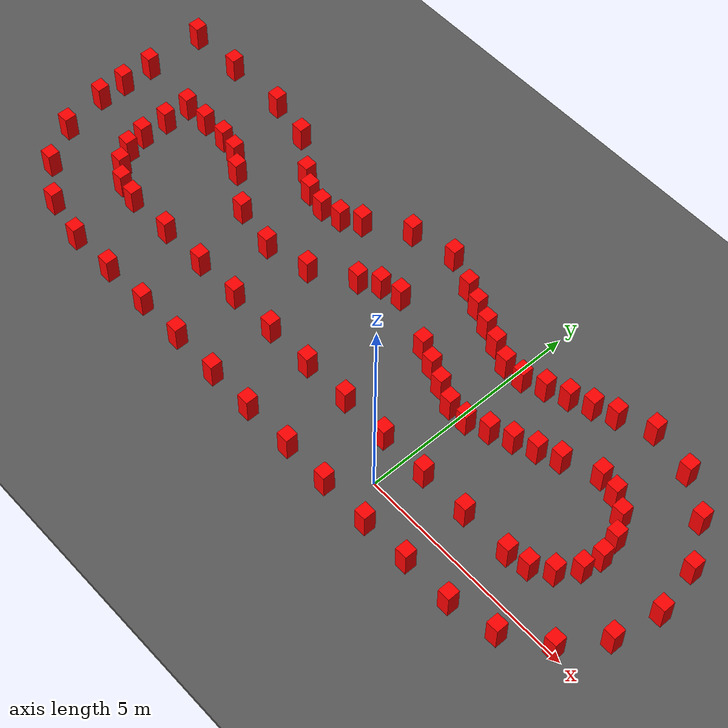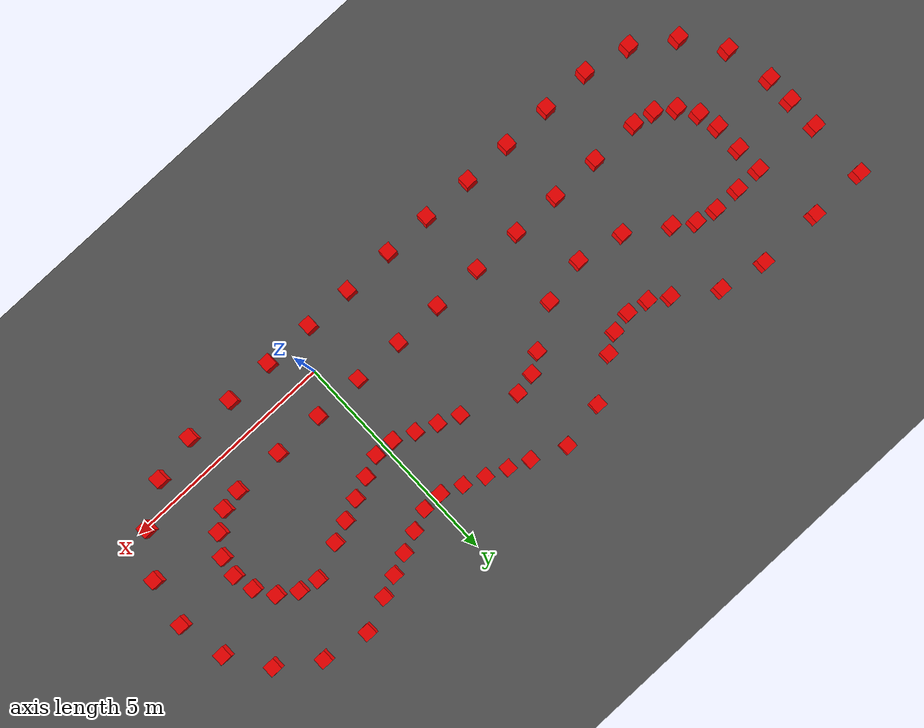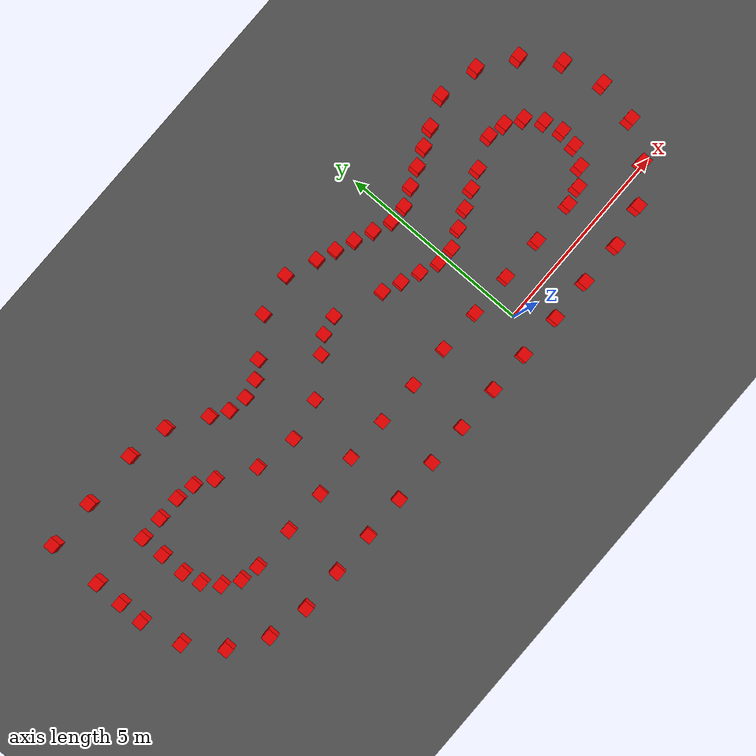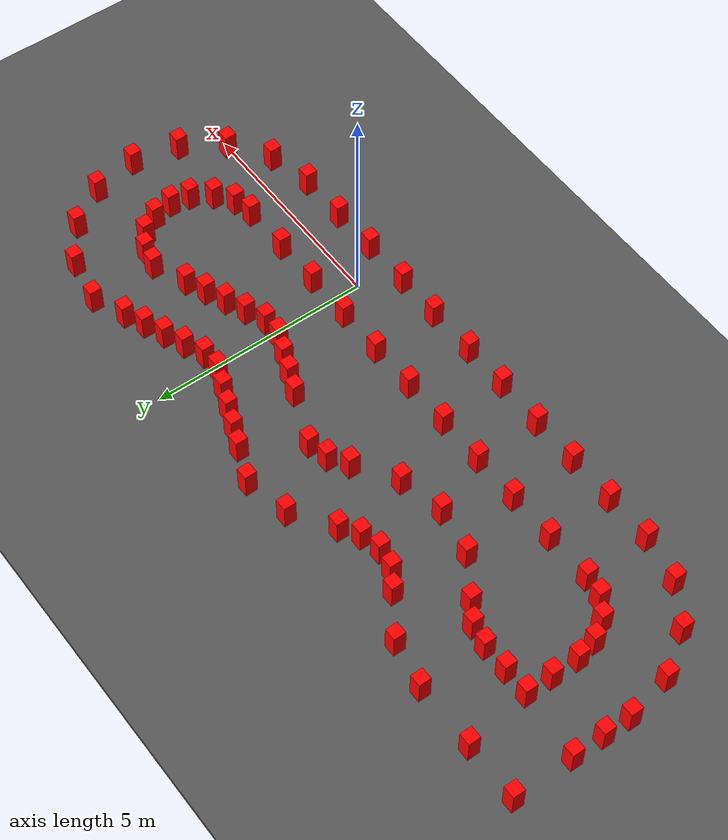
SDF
<?xml version='1.0' encoding='utf-8'?>
<sdf version="1.6">
  <world name="prototype">
    <gravity>0 0 -9.81</gravity>
    <physics name="default" type="ode">
      <max_step_size>0.001</max_step_size>
      <real_time_update_rate>1000</real_time_update_rate>
    </physics>
    <light name="sun" type="directional">
      <direction>-0.5 0.2 -1</direction>
      <diffuse>1 1 1 1</diffuse>
    </light>
    <model name="ground">
      <static>true</static>
      <pose>0 0 -0.05 0 0 0</pose>
      <link name="body">
        <visual name="visual">
          <geometry>
            <box>
              <size>200 200 0.1</size>
            </box>
          </geometry>
          <material>
            <ambient>.35 .35 .35 1</ambient>
            <diffuse>.35 .35 .35 1</diffuse>
          </material>
        </visual>
        <collision name="collision">
          <geometry>
            <box>
              <size>200 200 0.1</size>
            </box>
          </geometry>
        </collision>
      </link>
    </model>
    <model name="cone_proxy_c0">
      <static>true</static>
      <pose>-8.4614 -0.7354 0.315 0 0 0</pose>
      <link name="body">
        <visual name="visual">
          <geometry>
            <box>
              <size>.28 .28 .63</size>
            </box>
          </geometry>
          <material>
            <ambient>1 0 0 1</ambient>
            <diffuse>1 0 0 1</diffuse>
          </material>
        </visual>
        <collision name="collision">
          <geometry>
            <box>
              <size>.28 .28 .63</size>
            </box>
          </geometry>
        </collision>
      </link>
    </model>
    <model name="cone_proxy_c1">
      <static>true</static>
      <pose>-7.3422 -0.7358 0.315 0 0 0</pose>
      <link name="body">
        <visual name="visual">
          <geometry>
            <box>
              <size>.28 .28 .63</size>
            </box>
          </geometry>
          <material>
            <ambient>1 0 0 1</ambient>
            <diffuse>1 0 0 1</diffuse>
          </material>
        </visual>
        <collision name="collision">
          <geometry>
            <box>
              <size>.28 .28 .63</size>
            </box>
          </geometry>
        </collision>
      </link>
    </model>
    <model name="cone_proxy_c2">
      <static>true</static>
      <pose>-6.2104 -0.7362 0.315 0 0 0</pose>
      <link name="body">
        <visual name="visual">
          <geometry>
            <box>
              <size>.28 .28 .63</size>
            </box>
          </geometry>
          <material>
            <ambient>1 0 0 1</ambient>
            <diffuse>1 0 0 1</diffuse>
          </material>
        </visual>
        <collision name="collision">
          <geometry>
            <box>
              <size>.28 .28 .63</size>
            </box>
          </geometry>
        </collision>
      </link>
    </model>
    <model name="cone_proxy_c3">
      <static>true</static>
      <pose>-5.0912 -0.7366 0.315 0 0 0</pose>
      <link name="body">
        <visual name="visual">
          <geometry>
            <box>
              <size>.28 .28 .63</size>
            </box>
          </geometry>
          <material>
            <ambient>1 0 0 1</ambient>
            <diffuse>1 0 0 1</diffuse>
          </material>
        </visual>
        <collision name="collision">
          <geometry>
            <box>
              <size>.28 .28 .63</size>
            </box>
          </geometry>
        </collision>
      </link>
    </model>
    <model name="cone_proxy_c4">
      <static>true</static>
      <pose>-3.9339 -0.7624 0.315 0 0 0</pose>
      <link name="body">
        <visual name="visual">
          <geometry>
            <box>
              <size>.28 .28 .63</size>
            </box>
          </geometry>
          <material>
            <ambient>1 0 0 1</ambient>
            <diffuse>1 0 0 1</diffuse>
          </material>
        </visual>
        <collision name="collision">
          <geometry>
            <box>
              <size>.28 .28 .63</size>
            </box>
          </geometry>
        </collision>
      </link>
    </model>
    <model name="cone_proxy_c5">
      <static>true</static>
      <pose>-2.8402 -0.7628 0.315 0 0 0</pose>
      <link name="body">
        <visual name="visual">
          <geometry>
            <box>
              <size>.28 .28 .63</size>
            </box>
          </geometry>
          <material>
            <ambient>1 0 0 1</ambient>
            <diffuse>1 0 0 1</diffuse>
          </material>
        </visual>
        <collision name="collision">
          <geometry>
            <box>
              <size>.28 .28 .63</size>
            </box>
          </geometry>
        </collision>
      </link>
    </model>
    <model name="cone_proxy_c6">
      <static>true</static>
      <pose>-1.6702 -0.7505 0.315 0 0 0</pose>
      <link name="body">
        <visual name="visual">
          <geometry>
            <box>
              <size>.28 .28 .63</size>
            </box>
          </geometry>
          <material>
            <ambient>1 0 0 1</ambient>
            <diffuse>1 0 0 1</diffuse>
          </material>
        </visual>
        <collision name="collision">
          <geometry>
            <box>
              <size>.28 .28 .63</size>
            </box>
          </geometry>
        </collision>
      </link>
    </model>
    <model name="cone_proxy_c7">
      <static>true</static>
      <pose>-0.5765 -0.7636 0.315 0 0 0</pose>
      <link name="body">
        <visual name="visual">
          <geometry>
            <box>
              <size>.28 .28 .63</size>
            </box>
          </geometry>
          <material>
            <ambient>1 0 0 1</ambient>
            <diffuse>1 0 0 1</diffuse>
          </material>
        </visual>
        <collision name="collision">
          <geometry>
            <box>
              <size>.28 .28 .63</size>
            </box>
          </geometry>
        </collision>
      </link>
    </model>
    <model name="cone_proxy_c8">
      <static>true</static>
      <pose>0.5808 -0.7640 0.315 0 0 0</pose>
      <link name="body">
        <visual name="visual">
          <geometry>
            <box>
              <size>.28 .28 .63</size>
            </box>
          </geometry>
          <material>
            <ambient>1 0 0 1</ambient>
            <diffuse>1 0 0 1</diffuse>
          </material>
        </visual>
        <collision name="collision">
          <geometry>
            <box>
              <size>.28 .28 .63</size>
            </box>
          </geometry>
        </collision>
      </link>
    </model>
    <model name="cone_proxy_c9">
      <static>true</static>
      <pose>1.6873 -0.7389 0.315 0 0 0</pose>
      <link name="body">
        <visual name="visual">
          <geometry>
            <box>
              <size>.28 .28 .63</size>
            </box>
          </geometry>
          <material>
            <ambient>1 0 0 1</ambient>
            <diffuse>1 0 0 1</diffuse>
          </material>
        </visual>
        <collision name="collision">
          <geometry>
            <box>
              <size>.28 .28 .63</size>
            </box>
          </geometry>
        </collision>
      </link>
    </model>
    <model name="cone_proxy_c10">
      <static>true</static>
      <pose>2.8319 -0.7393 0.315 0 0 0</pose>
      <link name="body">
        <visual name="visual">
          <geometry>
            <box>
              <size>.28 .28 .63</size>
            </box>
          </geometry>
          <material>
            <ambient>1 0 0 1</ambient>
            <diffuse>1 0 0 1</diffuse>
          </material>
        </visual>
        <collision name="collision">
          <geometry>
            <box>
              <size>.28 .28 .63</size>
            </box>
          </geometry>
        </collision>
      </link>
    </model>
    <model name="cone_proxy_c11">
      <static>true</static>
      <pose>3.8748 -0.5235 0.315 0 0 0</pose>
      <link name="body">
        <visual name="visual">
          <geometry>
            <box>
              <size>.28 .28 .63</size>
            </box>
          </geometry>
          <material>
            <ambient>1 0 0 1</ambient>
            <diffuse>1 0 0 1</diffuse>
          </material>
        </visual>
        <collision name="collision">
          <geometry>
            <box>
              <size>.28 .28 .63</size>
            </box>
          </geometry>
        </collision>
      </link>
    </model>
    <model name="cone_proxy_c12">
      <static>true</static>
      <pose>4.7652 0.0612 0.315 0 0 0</pose>
      <link name="body">
        <visual name="visual">
          <geometry>
            <box>
              <size>.28 .28 .63</size>
            </box>
          </geometry>
          <material>
            <ambient>1 0 0 1</ambient>
            <diffuse>1 0 0 1</diffuse>
          </material>
        </visual>
        <collision name="collision">
          <geometry>
            <box>
              <size>.28 .28 .63</size>
            </box>
          </geometry>
        </collision>
      </link>
    </model>
    <model name="cone_proxy_c13">
      <static>true</static>
      <pose>5.3633 0.9512 0.315 0 0 0</pose>
      <link name="body">
        <visual name="visual">
          <geometry>
            <box>
              <size>.28 .28 .63</size>
            </box>
          </geometry>
          <material>
            <ambient>1 0 0 1</ambient>
            <diffuse>1 0 0 1</diffuse>
          </material>
        </visual>
        <collision name="collision">
          <geometry>
            <box>
              <size>.28 .28 .63</size>
            </box>
          </geometry>
        </collision>
      </link>
    </model>
    <model name="cone_proxy_c14">
      <static>true</static>
      <pose>5.5798 2.0067 0.315 0 0 0</pose>
      <link name="body">
        <visual name="visual">
          <geometry>
            <box>
              <size>.28 .28 .63</size>
            </box>
          </geometry>
          <material>
            <ambient>1 0 0 1</ambient>
            <diffuse>1 0 0 1</diffuse>
          </material>
        </visual>
        <collision name="collision">
          <geometry>
            <box>
              <size>.28 .28 .63</size>
            </box>
          </geometry>
        </collision>
      </link>
    </model>
    <model name="cone_proxy_c15">
      <static>true</static>
      <pose>5.3640 3.0624 0.315 0 0 0</pose>
      <link name="body">
        <visual name="visual">
          <geometry>
            <box>
              <size>.28 .28 .63</size>
            </box>
          </geometry>
          <material>
            <ambient>1 0 0 1</ambient>
            <diffuse>1 0 0 1</diffuse>
          </material>
        </visual>
        <collision name="collision">
          <geometry>
            <box>
              <size>.28 .28 .63</size>
            </box>
          </geometry>
        </collision>
      </link>
    </model>
    <model name="cone_proxy_c16">
      <static>true</static>
      <pose>4.7666 3.9528 0.315 0 0 0</pose>
      <link name="body">
        <visual name="visual">
          <geometry>
            <box>
              <size>.28 .28 .63</size>
            </box>
          </geometry>
          <material>
            <ambient>1 0 0 1</ambient>
            <diffuse>1 0 0 1</diffuse>
          </material>
        </visual>
        <collision name="collision">
          <geometry>
            <box>
              <size>.28 .28 .63</size>
            </box>
          </geometry>
        </collision>
      </link>
    </model>
    <model name="cone_proxy_c17">
      <static>true</static>
      <pose>3.8893 4.5508 0.315 0 0 0</pose>
      <link name="body">
        <visual name="visual">
          <geometry>
            <box>
              <size>.28 .28 .63</size>
            </box>
          </geometry>
          <material>
            <ambient>1 0 0 1</ambient>
            <diffuse>1 0 0 1</diffuse>
          </material>
        </visual>
        <collision name="collision">
          <geometry>
            <box>
              <size>.28 .28 .63</size>
            </box>
          </geometry>
        </collision>
      </link>
    </model>
    <model name="cone_proxy_c18">
      <static>true</static>
      <pose>2.8465 4.7547 0.315 0 0 0</pose>
      <link name="body">
        <visual name="visual">
          <geometry>
            <box>
              <size>.28 .28 .63</size>
            </box>
          </geometry>
          <material>
            <ambient>1 0 0 1</ambient>
            <diffuse>1 0 0 1</diffuse>
          </material>
        </visual>
        <collision name="collision">
          <geometry>
            <box>
              <size>.28 .28 .63</size>
            </box>
          </geometry>
        </collision>
      </link>
    </model>
    <model name="cone_proxy_c19">
      <static>true</static>
      <pose>-2.8256 4.7567 0.315 0 0 0</pose>
      <link name="body">
        <visual name="visual">
          <geometry>
            <box>
              <size>.28 .28 .63</size>
            </box>
          </geometry>
          <material>
            <ambient>1 0 0 1</ambient>
            <diffuse>1 0 0 1</diffuse>
          </material>
        </visual>
        <collision name="collision">
          <geometry>
            <box>
              <size>.28 .28 .63</size>
            </box>
          </geometry>
        </collision>
      </link>
    </model>
    <model name="cone_proxy_c20">
      <static>true</static>
      <pose>-3.8685 4.5536 0.315 0 0 0</pose>
      <link name="body">
        <visual name="visual">
          <geometry>
            <box>
              <size>.28 .28 .63</size>
            </box>
          </geometry>
          <material>
            <ambient>1 0 0 1</ambient>
            <diffuse>1 0 0 1</diffuse>
          </material>
        </visual>
        <collision name="collision">
          <geometry>
            <box>
              <size>.28 .28 .63</size>
            </box>
          </geometry>
        </collision>
      </link>
    </model>
    <model name="cone_proxy_c21">
      <static>true</static>
      <pose>-4.7589 3.9434 0.315 0 0 0</pose>
      <link name="body">
        <visual name="visual">
          <geometry>
            <box>
              <size>.28 .28 .63</size>
            </box>
          </geometry>
          <material>
            <ambient>1 0 0 1</ambient>
            <diffuse>1 0 0 1</diffuse>
          </material>
        </visual>
        <collision name="collision">
          <geometry>
            <box>
              <size>.28 .28 .63</size>
            </box>
          </geometry>
        </collision>
      </link>
    </model>
    <model name="cone_proxy_c22">
      <static>true</static>
      <pose>-5.1660 3.6892 0.315 0 0 0</pose>
      <link name="body">
        <visual name="visual">
          <geometry>
            <box>
              <size>.28 .28 .63</size>
            </box>
          </geometry>
          <material>
            <ambient>1 0 0 1</ambient>
            <diffuse>1 0 0 1</diffuse>
          </material>
        </visual>
        <collision name="collision">
          <geometry>
            <box>
              <size>.28 .28 .63</size>
            </box>
          </geometry>
        </collision>
      </link>
    </model>
    <model name="cone_proxy_c23">
      <static>true</static>
      <pose>-5.6366 3.5876 0.315 0 0 0</pose>
      <link name="body">
        <visual name="visual">
          <geometry>
            <box>
              <size>.28 .28 .63</size>
            </box>
          </geometry>
          <material>
            <ambient>1 0 0 1</ambient>
            <diffuse>1 0 0 1</diffuse>
          </material>
        </visual>
        <collision name="collision">
          <geometry>
            <box>
              <size>.28 .28 .63</size>
            </box>
          </geometry>
        </collision>
      </link>
    </model>
    <model name="cone_proxy_c24">
      <static>true</static>
      <pose>-6.1198 3.6768 0.315 0 0 0</pose>
      <link name="body">
        <visual name="visual">
          <geometry>
            <box>
              <size>.28 .28 .63</size>
            </box>
          </geometry>
          <material>
            <ambient>1 0 0 1</ambient>
            <diffuse>1 0 0 1</diffuse>
          </material>
        </visual>
        <collision name="collision">
          <geometry>
            <box>
              <size>.28 .28 .63</size>
            </box>
          </geometry>
        </collision>
      </link>
    </model>
    <model name="cone_proxy_c25">
      <static>true</static>
      <pose>-6.5267 3.9440 0.315 0 0 0</pose>
      <link name="body">
        <visual name="visual">
          <geometry>
            <box>
              <size>.28 .28 .63</size>
            </box>
          </geometry>
          <material>
            <ambient>1 0 0 1</ambient>
            <diffuse>1 0 0 1</diffuse>
          </material>
        </visual>
        <collision name="collision">
          <geometry>
            <box>
              <size>.28 .28 .63</size>
            </box>
          </geometry>
        </collision>
      </link>
    </model>
    <model name="cone_proxy_c26">
      <static>true</static>
      <pose>-7.4167 4.5548 0.315 0 0 0</pose>
      <link name="body">
        <visual name="visual">
          <geometry>
            <box>
              <size>.28 .28 .63</size>
            </box>
          </geometry>
          <material>
            <ambient>1 0 0 1</ambient>
            <diffuse>1 0 0 1</diffuse>
          </material>
        </visual>
        <collision name="collision">
          <geometry>
            <box>
              <size>.28 .28 .63</size>
            </box>
          </geometry>
        </collision>
      </link>
    </model>
    <model name="cone_proxy_c27">
      <static>true</static>
      <pose>-8.4595 4.7586 0.315 0 0 0</pose>
      <link name="body">
        <visual name="visual">
          <geometry>
            <box>
              <size>.28 .28 .63</size>
            </box>
          </geometry>
          <material>
            <ambient>1 0 0 1</ambient>
            <diffuse>1 0 0 1</diffuse>
          </material>
        </visual>
        <collision name="collision">
          <geometry>
            <box>
              <size>.28 .28 .63</size>
            </box>
          </geometry>
        </collision>
      </link>
    </model>
    <model name="cone_proxy_c28">
      <static>true</static>
      <pose>-9.9347 4.7592 0.315 0 0 0</pose>
      <link name="body">
        <visual name="visual">
          <geometry>
            <box>
              <size>.28 .28 .63</size>
            </box>
          </geometry>
          <material>
            <ambient>1 0 0 1</ambient>
            <diffuse>1 0 0 1</diffuse>
          </material>
        </visual>
        <collision name="collision">
          <geometry>
            <box>
              <size>.28 .28 .63</size>
            </box>
          </geometry>
        </collision>
      </link>
    </model>
    <model name="cone_proxy_c29">
      <static>true</static>
      <pose>-11.2192 4.7596 0.315 0 0 0</pose>
      <link name="body">
        <visual name="visual">
          <geometry>
            <box>
              <size>.28 .28 .63</size>
            </box>
          </geometry>
          <material>
            <ambient>1 0 0 1</ambient>
            <diffuse>1 0 0 1</diffuse>
          </material>
        </visual>
        <collision name="collision">
          <geometry>
            <box>
              <size>.28 .28 .63</size>
            </box>
          </geometry>
        </collision>
      </link>
    </model>
    <model name="cone_proxy_c30">
      <static>true</static>
      <pose>-11.2197 3.3861 0.315 0 0 0</pose>
      <link name="body">
        <visual name="visual">
          <geometry>
            <box>
              <size>.28 .28 .63</size>
            </box>
          </geometry>
          <material>
            <ambient>1 0 0 1</ambient>
            <diffuse>1 0 0 1</diffuse>
          </material>
        </visual>
        <collision name="collision">
          <geometry>
            <box>
              <size>.28 .28 .63</size>
            </box>
          </geometry>
        </collision>
      </link>
    </model>
    <model name="cone_proxy_c31">
      <static>true</static>
      <pose>-11.2199 2.6485 0.315 0 0 0</pose>
      <link name="body">
        <visual name="visual">
          <geometry>
            <box>
              <size>.28 .28 .63</size>
            </box>
          </geometry>
          <material>
            <ambient>1 0 0 1</ambient>
            <diffuse>1 0 0 1</diffuse>
          </material>
        </visual>
        <collision name="collision">
          <geometry>
            <box>
              <size>.28 .28 .63</size>
            </box>
          </geometry>
        </collision>
      </link>
    </model>
    <model name="cone_proxy_c32">
      <static>true</static>
      <pose>-11.2202 2.0126 0.315 0 0 0</pose>
      <link name="body">
        <visual name="visual">
          <geometry>
            <box>
              <size>.28 .28 .63</size>
            </box>
          </geometry>
          <material>
            <ambient>1 0 0 1</ambient>
            <diffuse>1 0 0 1</diffuse>
          </material>
        </visual>
        <collision name="collision">
          <geometry>
            <box>
              <size>.28 .28 .63</size>
            </box>
          </geometry>
        </collision>
      </link>
    </model>
    <model name="cone_proxy_c33">
      <static>true</static>
      <pose>-11.0043 0.9570 0.315 0 0 0</pose>
      <link name="body">
        <visual name="visual">
          <geometry>
            <box>
              <size>.28 .28 .63</size>
            </box>
          </geometry>
          <material>
            <ambient>1 0 0 1</ambient>
            <diffuse>1 0 0 1</diffuse>
          </material>
        </visual>
        <collision name="collision">
          <geometry>
            <box>
              <size>.28 .28 .63</size>
            </box>
          </geometry>
        </collision>
      </link>
    </model>
    <model name="cone_proxy_c34">
      <static>true</static>
      <pose>-10.4069 0.0665 0.315 0 0 0</pose>
      <link name="body">
        <visual name="visual">
          <geometry>
            <box>
              <size>.28 .28 .63</size>
            </box>
          </geometry>
          <material>
            <ambient>1 0 0 1</ambient>
            <diffuse>1 0 0 1</diffuse>
          </material>
        </visual>
        <collision name="collision">
          <geometry>
            <box>
              <size>.28 .28 .63</size>
            </box>
          </geometry>
        </collision>
      </link>
    </model>
    <model name="cone_proxy_c35">
      <static>true</static>
      <pose>-9.5169 -0.5188 0.315 0 0 0</pose>
      <link name="body">
        <visual name="visual">
          <geometry>
            <box>
              <size>.28 .28 .63</size>
            </box>
          </geometry>
          <material>
            <ambient>1 0 0 1</ambient>
            <diffuse>1 0 0 1</diffuse>
          </material>
        </visual>
        <collision name="collision">
          <geometry>
            <box>
              <size>.28 .28 .63</size>
            </box>
          </geometry>
        </collision>
      </link>
    </model>
    <model name="cone_proxy_c36">
      <static>true</static>
      <pose>-8.4609 0.7653 0.315 0 0 0</pose>
      <link name="body">
        <visual name="visual">
          <geometry>
            <box>
              <size>.28 .28 .63</size>
            </box>
          </geometry>
          <material>
            <ambient>1 0 0 1</ambient>
            <diffuse>1 0 0 1</diffuse>
          </material>
        </visual>
        <collision name="collision">
          <geometry>
            <box>
              <size>.28 .28 .63</size>
            </box>
          </geometry>
        </collision>
      </link>
    </model>
    <model name="cone_proxy_c37">
      <static>true</static>
      <pose>-7.3417 0.7649 0.315 0 0 0</pose>
      <link name="body">
        <visual name="visual">
          <geometry>
            <box>
              <size>.28 .28 .63</size>
            </box>
          </geometry>
          <material>
            <ambient>1 0 0 1</ambient>
            <diffuse>1 0 0 1</diffuse>
          </material>
        </visual>
        <collision name="collision">
          <geometry>
            <box>
              <size>.28 .28 .63</size>
            </box>
          </geometry>
        </collision>
      </link>
    </model>
    <model name="cone_proxy_c38">
      <static>true</static>
      <pose>-6.2098 0.7645 0.315 0 0 0</pose>
      <link name="body">
        <visual name="visual">
          <geometry>
            <box>
              <size>.28 .28 .63</size>
            </box>
          </geometry>
          <material>
            <ambient>1 0 0 1</ambient>
            <diffuse>1 0 0 1</diffuse>
          </material>
        </visual>
        <collision name="collision">
          <geometry>
            <box>
              <size>.28 .28 .63</size>
            </box>
          </geometry>
        </collision>
      </link>
    </model>
    <model name="cone_proxy_c39">
      <static>true</static>
      <pose>-5.0907 0.7641 0.315 0 0 0</pose>
      <link name="body">
        <visual name="visual">
          <geometry>
            <box>
              <size>.28 .28 .63</size>
            </box>
          </geometry>
          <material>
            <ambient>1 0 0 1</ambient>
            <diffuse>1 0 0 1</diffuse>
          </material>
        </visual>
        <collision name="collision">
          <geometry>
            <box>
              <size>.28 .28 .63</size>
            </box>
          </geometry>
        </collision>
      </link>
    </model>
    <model name="cone_proxy_c40">
      <static>true</static>
      <pose>-3.9588 0.7637 0.315 0 0 0</pose>
      <link name="body">
        <visual name="visual">
          <geometry>
            <box>
              <size>.28 .28 .63</size>
            </box>
          </geometry>
          <material>
            <ambient>1 0 0 1</ambient>
            <diffuse>1 0 0 1</diffuse>
          </material>
        </visual>
        <collision name="collision">
          <geometry>
            <box>
              <size>.28 .28 .63</size>
            </box>
          </geometry>
        </collision>
      </link>
    </model>
    <model name="cone_proxy_c41">
      <static>true</static>
      <pose>-2.8270 0.7633 0.315 0 0 0</pose>
      <link name="body">
        <visual name="visual">
          <geometry>
            <box>
              <size>.28 .28 .63</size>
            </box>
          </geometry>
          <material>
            <ambient>1 0 0 1</ambient>
            <diffuse>1 0 0 1</diffuse>
          </material>
        </visual>
        <collision name="collision">
          <geometry>
            <box>
              <size>.28 .28 .63</size>
            </box>
          </geometry>
        </collision>
      </link>
    </model>
    <model name="cone_proxy_c42">
      <static>true</static>
      <pose>-1.7078 0.7757 0.315 0 0 0</pose>
      <link name="body">
        <visual name="visual">
          <geometry>
            <box>
              <size>.28 .28 .63</size>
            </box>
          </geometry>
          <material>
            <ambient>1 0 0 1</ambient>
            <diffuse>1 0 0 1</diffuse>
          </material>
        </visual>
        <collision name="collision">
          <geometry>
            <box>
              <size>.28 .28 .63</size>
            </box>
          </geometry>
        </collision>
      </link>
    </model>
    <model name="cone_proxy_c43">
      <static>true</static>
      <pose>-0.5759 0.7625 0.315 0 0 0</pose>
      <link name="body">
        <visual name="visual">
          <geometry>
            <box>
              <size>.28 .28 .63</size>
            </box>
          </geometry>
          <material>
            <ambient>1 0 0 1</ambient>
            <diffuse>1 0 0 1</diffuse>
          </material>
        </visual>
        <collision name="collision">
          <geometry>
            <box>
              <size>.28 .28 .63</size>
            </box>
          </geometry>
        </collision>
      </link>
    </model>
    <model name="cone_proxy_c44">
      <static>true</static>
      <pose>0.5559 0.7621 0.315 0 0 0</pose>
      <link name="body">
        <visual name="visual">
          <geometry>
            <box>
              <size>.28 .28 .63</size>
            </box>
          </geometry>
          <material>
            <ambient>1 0 0 1</ambient>
            <diffuse>1 0 0 1</diffuse>
          </material>
        </visual>
        <collision name="collision">
          <geometry>
            <box>
              <size>.28 .28 .63</size>
            </box>
          </geometry>
        </collision>
      </link>
    </model>
    <model name="cone_proxy_c45">
      <static>true</static>
      <pose>1.6878 0.7618 0.315 0 0 0</pose>
      <link name="body">
        <visual name="visual">
          <geometry>
            <box>
              <size>.28 .28 .63</size>
            </box>
          </geometry>
          <material>
            <ambient>1 0 0 1</ambient>
            <diffuse>1 0 0 1</diffuse>
          </material>
        </visual>
        <collision name="collision">
          <geometry>
            <box>
              <size>.28 .28 .63</size>
            </box>
          </geometry>
        </collision>
      </link>
    </model>
    <model name="cone_proxy_c46">
      <static>true</static>
      <pose>2.8324 0.7614 0.315 0 0 0</pose>
      <link name="body">
        <visual name="visual">
          <geometry>
            <box>
              <size>.28 .28 .63</size>
            </box>
          </geometry>
          <material>
            <ambient>1 0 0 1</ambient>
            <diffuse>1 0 0 1</diffuse>
          </material>
        </visual>
        <collision name="collision">
          <geometry>
            <box>
              <size>.28 .28 .63</size>
            </box>
          </geometry>
        </collision>
      </link>
    </model>
    <model name="cone_proxy_c47">
      <static>true</static>
      <pose>3.3030 0.8502 0.315 0 0 0</pose>
      <link name="body">
        <visual name="visual">
          <geometry>
            <box>
              <size>.28 .28 .63</size>
            </box>
          </geometry>
          <material>
            <ambient>1 0 0 1</ambient>
            <diffuse>1 0 0 1</diffuse>
          </material>
        </visual>
        <collision name="collision">
          <geometry>
            <box>
              <size>.28 .28 .63</size>
            </box>
          </geometry>
        </collision>
      </link>
    </model>
    <model name="cone_proxy_c48">
      <static>true</static>
      <pose>3.7100 1.1299 0.315 0 0 0</pose>
      <link name="body">
        <visual name="visual">
          <geometry>
            <box>
              <size>.28 .28 .63</size>
            </box>
          </geometry>
          <material>
            <ambient>1 0 0 1</ambient>
            <diffuse>1 0 0 1</diffuse>
          </material>
        </visual>
        <collision name="collision">
          <geometry>
            <box>
              <size>.28 .28 .63</size>
            </box>
          </geometry>
        </collision>
      </link>
    </model>
    <model name="cone_proxy_c49">
      <static>true</static>
      <pose>4.0027 1.5622 0.315 0 0 0</pose>
      <link name="body">
        <visual name="visual">
          <geometry>
            <box>
              <size>.28 .28 .63</size>
            </box>
          </geometry>
          <material>
            <ambient>1 0 0 1</ambient>
            <diffuse>1 0 0 1</diffuse>
          </material>
        </visual>
        <collision name="collision">
          <geometry>
            <box>
              <size>.28 .28 .63</size>
            </box>
          </geometry>
        </collision>
      </link>
    </model>
    <model name="cone_proxy_c50">
      <static>true</static>
      <pose>4.0792 2.0072 0.315 0 0 0</pose>
      <link name="body">
        <visual name="visual">
          <geometry>
            <box>
              <size>.28 .28 .63</size>
            </box>
          </geometry>
          <material>
            <ambient>1 0 0 1</ambient>
            <diffuse>1 0 0 1</diffuse>
          </material>
        </visual>
        <collision name="collision">
          <geometry>
            <box>
              <size>.28 .28 .63</size>
            </box>
          </geometry>
        </collision>
      </link>
    </model>
    <model name="cone_proxy_c51">
      <static>true</static>
      <pose>3.9776 2.4778 0.315 0 0 0</pose>
      <link name="body">
        <visual name="visual">
          <geometry>
            <box>
              <size>.28 .28 .63</size>
            </box>
          </geometry>
          <material>
            <ambient>1 0 0 1</ambient>
            <diffuse>1 0 0 1</diffuse>
          </material>
        </visual>
        <collision name="collision">
          <geometry>
            <box>
              <size>.28 .28 .63</size>
            </box>
          </geometry>
        </collision>
      </link>
    </model>
    <model name="cone_proxy_c52">
      <static>true</static>
      <pose>3.7107 2.8976 0.315 0 0 0</pose>
      <link name="body">
        <visual name="visual">
          <geometry>
            <box>
              <size>.28 .28 .63</size>
            </box>
          </geometry>
          <material>
            <ambient>1 0 0 1</ambient>
            <diffuse>1 0 0 1</diffuse>
          </material>
        </visual>
        <collision name="collision">
          <geometry>
            <box>
              <size>.28 .28 .63</size>
            </box>
          </geometry>
        </collision>
      </link>
    </model>
    <model name="cone_proxy_c53">
      <static>true</static>
      <pose>3.3038 3.1648 0.315 0 0 0</pose>
      <link name="body">
        <visual name="visual">
          <geometry>
            <box>
              <size>.28 .28 .63</size>
            </box>
          </geometry>
          <material>
            <ambient>1 0 0 1</ambient>
            <diffuse>1 0 0 1</diffuse>
          </material>
        </visual>
        <collision name="collision">
          <geometry>
            <box>
              <size>.28 .28 .63</size>
            </box>
          </geometry>
        </collision>
      </link>
    </model>
    <model name="cone_proxy_c54">
      <static>true</static>
      <pose>2.8587 3.2540 0.315 0 0 0</pose>
      <link name="body">
        <visual name="visual">
          <geometry>
            <box>
              <size>.28 .28 .63</size>
            </box>
          </geometry>
          <material>
            <ambient>1 0 0 1</ambient>
            <diffuse>1 0 0 1</diffuse>
          </material>
        </visual>
        <collision name="collision">
          <geometry>
            <box>
              <size>.28 .28 .63</size>
            </box>
          </geometry>
        </collision>
      </link>
    </model>
    <model name="cone_proxy_c55">
      <static>true</static>
      <pose>-2.8134 3.2560 0.315 0 0 0</pose>
      <link name="body">
        <visual name="visual">
          <geometry>
            <box>
              <size>.28 .28 .63</size>
            </box>
          </geometry>
          <material>
            <ambient>1 0 0 1</ambient>
            <diffuse>1 0 0 1</diffuse>
          </material>
        </visual>
        <collision name="collision">
          <geometry>
            <box>
              <size>.28 .28 .63</size>
            </box>
          </geometry>
        </collision>
      </link>
    </model>
    <model name="cone_proxy_c56">
      <static>true</static>
      <pose>-3.2967 3.1544 0.315 0 0 0</pose>
      <link name="body">
        <visual name="visual">
          <geometry>
            <box>
              <size>.28 .28 .63</size>
            </box>
          </geometry>
          <material>
            <ambient>1 0 0 1</ambient>
            <diffuse>1 0 0 1</diffuse>
          </material>
        </visual>
        <collision name="collision">
          <geometry>
            <box>
              <size>.28 .28 .63</size>
            </box>
          </geometry>
        </collision>
      </link>
    </model>
    <model name="cone_proxy_c57">
      <static>true</static>
      <pose>-3.7037 2.8875 0.315 0 0 0</pose>
      <link name="body">
        <visual name="visual">
          <geometry>
            <box>
              <size>.28 .28 .63</size>
            </box>
          </geometry>
          <material>
            <ambient>1 0 0 1</ambient>
            <diffuse>1 0 0 1</diffuse>
          </material>
        </visual>
        <collision name="collision">
          <geometry>
            <box>
              <size>.28 .28 .63</size>
            </box>
          </geometry>
        </collision>
      </link>
    </model>
    <model name="cone_proxy_c58">
      <static>true</static>
      <pose>-4.6069 2.3028 0.315 0 0 0</pose>
      <link name="body">
        <visual name="visual">
          <geometry>
            <box>
              <size>.28 .28 .63</size>
            </box>
          </geometry>
          <material>
            <ambient>1 0 0 1</ambient>
            <diffuse>1 0 0 1</diffuse>
          </material>
        </visual>
        <collision name="collision">
          <geometry>
            <box>
              <size>.28 .28 .63</size>
            </box>
          </geometry>
        </collision>
      </link>
    </model>
    <model name="cone_proxy_c59">
      <static>true</static>
      <pose>-5.6371 2.0869 0.315 0 0 0</pose>
      <link name="body">
        <visual name="visual">
          <geometry>
            <box>
              <size>.28 .28 .63</size>
            </box>
          </geometry>
          <material>
            <ambient>1 0 0 1</ambient>
            <diffuse>1 0 0 1</diffuse>
          </material>
        </visual>
        <collision name="collision">
          <geometry>
            <box>
              <size>.28 .28 .63</size>
            </box>
          </geometry>
        </collision>
      </link>
    </model>
    <model name="cone_proxy_c60">
      <static>true</static>
      <pose>-6.6926 2.2908 0.315 0 0 0</pose>
      <link name="body">
        <visual name="visual">
          <geometry>
            <box>
              <size>.28 .28 .63</size>
            </box>
          </geometry>
          <material>
            <ambient>1 0 0 1</ambient>
            <diffuse>1 0 0 1</diffuse>
          </material>
        </visual>
        <collision name="collision">
          <geometry>
            <box>
              <size>.28 .28 .63</size>
            </box>
          </geometry>
        </collision>
      </link>
    </model>
    <model name="cone_proxy_c61">
      <static>true</static>
      <pose>-7.5699 2.8761 0.315 0 0 0</pose>
      <link name="body">
        <visual name="visual">
          <geometry>
            <box>
              <size>.28 .28 .63</size>
            </box>
          </geometry>
          <material>
            <ambient>1 0 0 1</ambient>
            <diffuse>1 0 0 1</diffuse>
          </material>
        </visual>
        <collision name="collision">
          <geometry>
            <box>
              <size>.28 .28 .63</size>
            </box>
          </geometry>
        </collision>
      </link>
    </model>
    <model name="cone_proxy_c62">
      <static>true</static>
      <pose>-8.0022 3.1688 0.315 0 0 0</pose>
      <link name="body">
        <visual name="visual">
          <geometry>
            <box>
              <size>.28 .28 .63</size>
            </box>
          </geometry>
          <material>
            <ambient>1 0 0 1</ambient>
            <diffuse>1 0 0 1</diffuse>
          </material>
        </visual>
        <collision name="collision">
          <geometry>
            <box>
              <size>.28 .28 .63</size>
            </box>
          </geometry>
        </collision>
      </link>
    </model>
    <model name="cone_proxy_c63">
      <static>true</static>
      <pose>-8.4854 3.2580 0.315 0 0 0</pose>
      <link name="body">
        <visual name="visual">
          <geometry>
            <box>
              <size>.28 .28 .63</size>
            </box>
          </geometry>
          <material>
            <ambient>1 0 0 1</ambient>
            <diffuse>1 0 0 1</diffuse>
          </material>
        </visual>
        <collision name="collision">
          <geometry>
            <box>
              <size>.28 .28 .63</size>
            </box>
          </geometry>
        </collision>
      </link>
    </model>
    <model name="cone_proxy_c64">
      <static>true</static>
      <pose>-9.1086 3.2582 0.315 0 0 0</pose>
      <link name="body">
        <visual name="visual">
          <geometry>
            <box>
              <size>.28 .28 .63</size>
            </box>
          </geometry>
          <material>
            <ambient>1 0 0 1</ambient>
            <diffuse>1 0 0 1</diffuse>
          </material>
        </visual>
        <collision name="collision">
          <geometry>
            <box>
              <size>.28 .28 .63</size>
            </box>
          </geometry>
        </collision>
      </link>
    </model>
    <model name="cone_proxy_c65">
      <static>true</static>
      <pose>-9.7190 3.2584 0.315 0 0 0</pose>
      <link name="body">
        <visual name="visual">
          <geometry>
            <box>
              <size>.28 .28 .63</size>
            </box>
          </geometry>
          <material>
            <ambient>1 0 0 1</ambient>
            <diffuse>1 0 0 1</diffuse>
          </material>
        </visual>
        <collision name="collision">
          <geometry>
            <box>
              <size>.28 .28 .63</size>
            </box>
          </geometry>
        </collision>
      </link>
    </model>
    <model name="cone_proxy_c66">
      <static>true</static>
      <pose>-9.7193 2.6479 0.315 0 0 0</pose>
      <link name="body">
        <visual name="visual">
          <geometry>
            <box>
              <size>.28 .28 .63</size>
            </box>
          </geometry>
          <material>
            <ambient>1 0 0 1</ambient>
            <diffuse>1 0 0 1</diffuse>
          </material>
        </visual>
        <collision name="collision">
          <geometry>
            <box>
              <size>.28 .28 .63</size>
            </box>
          </geometry>
        </collision>
      </link>
    </model>
    <model name="cone_proxy_c67">
      <static>true</static>
      <pose>-9.7195 2.0121 0.315 0 0 0</pose>
      <link name="body">
        <visual name="visual">
          <geometry>
            <box>
              <size>.28 .28 .63</size>
            </box>
          </geometry>
          <material>
            <ambient>1 0 0 1</ambient>
            <diffuse>1 0 0 1</diffuse>
          </material>
        </visual>
        <collision name="collision">
          <geometry>
            <box>
              <size>.28 .28 .63</size>
            </box>
          </geometry>
        </collision>
      </link>
    </model>
    <model name="cone_proxy_c68">
      <static>true</static>
      <pose>-9.6179 1.5415 0.315 0 0 0</pose>
      <link name="body">
        <visual name="visual">
          <geometry>
            <box>
              <size>.28 .28 .63</size>
            </box>
          </geometry>
          <material>
            <ambient>1 0 0 1</ambient>
            <diffuse>1 0 0 1</diffuse>
          </material>
        </visual>
        <collision name="collision">
          <geometry>
            <box>
              <size>.28 .28 .63</size>
            </box>
          </geometry>
        </collision>
      </link>
    </model>
    <model name="cone_proxy_c69">
      <static>true</static>
      <pose>-9.3510 1.1344 0.315 0 0 0</pose>
      <link name="body">
        <visual name="visual">
          <geometry>
            <box>
              <size>.28 .28 .63</size>
            </box>
          </geometry>
          <material>
            <ambient>1 0 0 1</ambient>
            <diffuse>1 0 0 1</diffuse>
          </material>
        </visual>
        <collision name="collision">
          <geometry>
            <box>
              <size>.28 .28 .63</size>
            </box>
          </geometry>
        </collision>
      </link>
    </model>
    <model name="cone_proxy_c70">
      <static>true</static>
      <pose>-8.9441 0.8545 0.315 0 0 0</pose>
      <link name="body">
        <visual name="visual">
          <geometry>
            <box>
              <size>.28 .28 .63</size>
            </box>
          </geometry>
          <material>
            <ambient>1 0 0 1</ambient>
            <diffuse>1 0 0 1</diffuse>
          </material>
        </visual>
        <collision name="collision">
          <geometry>
            <box>
              <size>.28 .28 .63</size>
            </box>
          </geometry>
        </collision>
      </link>
    </model>
    <model name="cone_proxy_c71">
      <static>true</static>
      <pose>2.1043 4.4508 0.315 0 0 0</pose>
      <link name="body">
        <visual name="visual">
          <geometry>
            <box>
              <size>.28 .28 .63</size>
            </box>
          </geometry>
          <material>
            <ambient>1 0 0 1</ambient>
            <diffuse>1 0 0 1</diffuse>
          </material>
        </visual>
        <collision name="collision">
          <geometry>
            <box>
              <size>.28 .28 .63</size>
            </box>
          </geometry>
        </collision>
      </link>
    </model>
    <model name="cone_proxy_c72">
      <static>true</static>
      <pose>1.6416 4.2614 0.315 0 0 0</pose>
      <link name="body">
        <visual name="visual">
          <geometry>
            <box>
              <size>.28 .28 .63</size>
            </box>
          </geometry>
          <material>
            <ambient>1 0 0 1</ambient>
            <diffuse>1 0 0 1</diffuse>
          </material>
        </visual>
        <collision name="collision">
          <geometry>
            <box>
              <size>.28 .28 .63</size>
            </box>
          </geometry>
        </collision>
      </link>
    </model>
    <model name="cone_proxy_c73">
      <static>true</static>
      <pose>1.1789 4.0720 0.315 0 0 0</pose>
      <link name="body">
        <visual name="visual">
          <geometry>
            <box>
              <size>.28 .28 .63</size>
            </box>
          </geometry>
          <material>
            <ambient>1 0 0 1</ambient>
            <diffuse>1 0 0 1</diffuse>
          </material>
        </visual>
        <collision name="collision">
          <geometry>
            <box>
              <size>.28 .28 .63</size>
            </box>
          </geometry>
        </collision>
      </link>
    </model>
    <model name="cone_proxy_c74">
      <static>true</static>
      <pose>0.7162 3.8825 0.315 0 0 0</pose>
      <link name="body">
        <visual name="visual">
          <geometry>
            <box>
              <size>.28 .28 .63</size>
            </box>
          </geometry>
          <material>
            <ambient>1 0 0 1</ambient>
            <diffuse>1 0 0 1</diffuse>
          </material>
        </visual>
        <collision name="collision">
          <geometry>
            <box>
              <size>.28 .28 .63</size>
            </box>
          </geometry>
        </collision>
      </link>
    </model>
    <model name="cone_proxy_c75">
      <static>true</static>
      <pose>0.2534 3.6931 0.315 0 0 0</pose>
      <link name="body">
        <visual name="visual">
          <geometry>
            <box>
              <size>.28 .28 .63</size>
            </box>
          </geometry>
          <material>
            <ambient>1 0 0 1</ambient>
            <diffuse>1 0 0 1</diffuse>
          </material>
        </visual>
        <collision name="collision">
          <geometry>
            <box>
              <size>.28 .28 .63</size>
            </box>
          </geometry>
        </collision>
      </link>
    </model>
    <model name="cone_proxy_c76">
      <static>true</static>
      <pose>-0.2092 3.6824 0.315 0 0 0</pose>
      <link name="body">
        <visual name="visual">
          <geometry>
            <box>
              <size>.28 .28 .63</size>
            </box>
          </geometry>
          <material>
            <ambient>1 0 0 1</ambient>
            <diffuse>1 0 0 1</diffuse>
          </material>
        </visual>
        <collision name="collision">
          <geometry>
            <box>
              <size>.28 .28 .63</size>
            </box>
          </geometry>
        </collision>
      </link>
    </model>
    <model name="cone_proxy_c77">
      <static>true</static>
      <pose>-0.6717 3.8723 0.315 0 0 0</pose>
      <link name="body">
        <visual name="visual">
          <geometry>
            <box>
              <size>.28 .28 .63</size>
            </box>
          </geometry>
          <material>
            <ambient>1 0 0 1</ambient>
            <diffuse>1 0 0 1</diffuse>
          </material>
        </visual>
        <collision name="collision">
          <geometry>
            <box>
              <size>.28 .28 .63</size>
            </box>
          </geometry>
        </collision>
      </link>
    </model>
    <model name="cone_proxy_c78">
      <static>true</static>
      <pose>-1.1342 4.0622 0.315 0 0 0</pose>
      <link name="body">
        <visual name="visual">
          <geometry>
            <box>
              <size>.28 .28 .63</size>
            </box>
          </geometry>
          <material>
            <ambient>1 0 0 1</ambient>
            <diffuse>1 0 0 1</diffuse>
          </material>
        </visual>
        <collision name="collision">
          <geometry>
            <box>
              <size>.28 .28 .63</size>
            </box>
          </geometry>
        </collision>
      </link>
    </model>
    <model name="cone_proxy_c79">
      <static>true</static>
      <pose>-1.5968 4.2522 0.315 0 0 0</pose>
      <link name="body">
        <visual name="visual">
          <geometry>
            <box>
              <size>.28 .28 .63</size>
            </box>
          </geometry>
          <material>
            <ambient>1 0 0 1</ambient>
            <diffuse>1 0 0 1</diffuse>
          </material>
        </visual>
        <collision name="collision">
          <geometry>
            <box>
              <size>.28 .28 .63</size>
            </box>
          </geometry>
        </collision>
      </link>
    </model>
    <model name="cone_proxy_c80">
      <static>true</static>
      <pose>-2.0593 4.4421 0.315 0 0 0</pose>
      <link name="body">
        <visual name="visual">
          <geometry>
            <box>
              <size>.28 .28 .63</size>
            </box>
          </geometry>
          <material>
            <ambient>1 0 0 1</ambient>
            <diffuse>1 0 0 1</diffuse>
          </material>
        </visual>
        <collision name="collision">
          <geometry>
            <box>
              <size>.28 .28 .63</size>
            </box>
          </geometry>
        </collision>
      </link>
    </model>
    <model name="cone_proxy_c81">
      <static>true</static>
      <pose>2.0802 2.9369 0.315 0 0 0</pose>
      <link name="body">
        <visual name="visual">
          <geometry>
            <box>
              <size>.28 .28 .63</size>
            </box>
          </geometry>
          <material>
            <ambient>1 0 0 1</ambient>
            <diffuse>1 0 0 1</diffuse>
          </material>
        </visual>
        <collision name="collision">
          <geometry>
            <box>
              <size>.28 .28 .63</size>
            </box>
          </geometry>
        </collision>
      </link>
    </model>
    <model name="cone_proxy_c82">
      <static>true</static>
      <pose>1.6172 2.7483 0.315 0 0 0</pose>
      <link name="body">
        <visual name="visual">
          <geometry>
            <box>
              <size>.28 .28 .63</size>
            </box>
          </geometry>
          <material>
            <ambient>1 0 0 1</ambient>
            <diffuse>1 0 0 1</diffuse>
          </material>
        </visual>
        <collision name="collision">
          <geometry>
            <box>
              <size>.28 .28 .63</size>
            </box>
          </geometry>
        </collision>
      </link>
    </model>
    <model name="cone_proxy_c83">
      <static>true</static>
      <pose>1.1541 2.5597 0.315 0 0 0</pose>
      <link name="body">
        <visual name="visual">
          <geometry>
            <box>
              <size>.28 .28 .63</size>
            </box>
          </geometry>
          <material>
            <ambient>1 0 0 1</ambient>
            <diffuse>1 0 0 1</diffuse>
          </material>
        </visual>
        <collision name="collision">
          <geometry>
            <box>
              <size>.28 .28 .63</size>
            </box>
          </geometry>
        </collision>
      </link>
    </model>
    <model name="cone_proxy_c84">
      <static>true</static>
      <pose>0.6910 2.3710 0.315 0 0 0</pose>
      <link name="body">
        <visual name="visual">
          <geometry>
            <box>
              <size>.28 .28 .63</size>
            </box>
          </geometry>
          <material>
            <ambient>1 0 0 1</ambient>
            <diffuse>1 0 0 1</diffuse>
          </material>
        </visual>
        <collision name="collision">
          <geometry>
            <box>
              <size>.28 .28 .63</size>
            </box>
          </geometry>
        </collision>
      </link>
    </model>
    <model name="cone_proxy_c85">
      <static>true</static>
      <pose>0.2280 2.1824 0.315 0 0 0</pose>
      <link name="body">
        <visual name="visual">
          <geometry>
            <box>
              <size>.28 .28 .63</size>
            </box>
          </geometry>
          <material>
            <ambient>1 0 0 1</ambient>
            <diffuse>1 0 0 1</diffuse>
          </material>
        </visual>
        <collision name="collision">
          <geometry>
            <box>
              <size>.28 .28 .63</size>
            </box>
          </geometry>
        </collision>
      </link>
    </model>
    <model name="cone_proxy_c86">
      <static>true</static>
      <pose>-0.2347 2.1931 0.315 0 0 0</pose>
      <link name="body">
        <visual name="visual">
          <geometry>
            <box>
              <size>.28 .28 .63</size>
            </box>
          </geometry>
          <material>
            <ambient>1 0 0 1</ambient>
            <diffuse>1 0 0 1</diffuse>
          </material>
        </visual>
        <collision name="collision">
          <geometry>
            <box>
              <size>.28 .28 .63</size>
            </box>
          </geometry>
        </collision>
      </link>
    </model>
    <model name="cone_proxy_c87">
      <static>true</static>
      <pose>-0.6969 2.3836 0.315 0 0 0</pose>
      <link name="body">
        <visual name="visual">
          <geometry>
            <box>
              <size>.28 .28 .63</size>
            </box>
          </geometry>
          <material>
            <ambient>1 0 0 1</ambient>
            <diffuse>1 0 0 1</diffuse>
          </material>
        </visual>
        <collision name="collision">
          <geometry>
            <box>
              <size>.28 .28 .63</size>
            </box>
          </geometry>
        </collision>
      </link>
    </model>
    <model name="cone_proxy_c88">
      <static>true</static>
      <pose>-1.1592 2.5742 0.315 0 0 0</pose>
      <link name="body">
        <visual name="visual">
          <geometry>
            <box>
              <size>.28 .28 .63</size>
            </box>
          </geometry>
          <material>
            <ambient>1 0 0 1</ambient>
            <diffuse>1 0 0 1</diffuse>
          </material>
        </visual>
        <collision name="collision">
          <geometry>
            <box>
              <size>.28 .28 .63</size>
            </box>
          </geometry>
        </collision>
      </link>
    </model>
    <model name="cone_proxy_c89">
      <static>true</static>
      <pose>-1.6215 2.7647 0.315 0 0 0</pose>
      <link name="body">
        <visual name="visual">
          <geometry>
            <box>
              <size>.28 .28 .63</size>
            </box>
          </geometry>
          <material>
            <ambient>1 0 0 1</ambient>
            <diffuse>1 0 0 1</diffuse>
          </material>
        </visual>
        <collision name="collision">
          <geometry>
            <box>
              <size>.28 .28 .63</size>
            </box>
          </geometry>
        </collision>
      </link>
    </model>
    <plugin name="gazebo_ros_state" filename="libgazebo_ros_state.so"/>
  </world>
</sdf>
